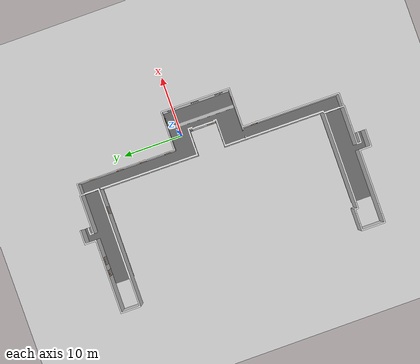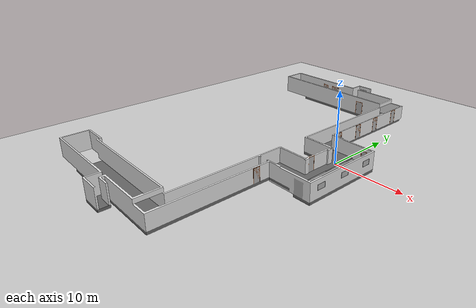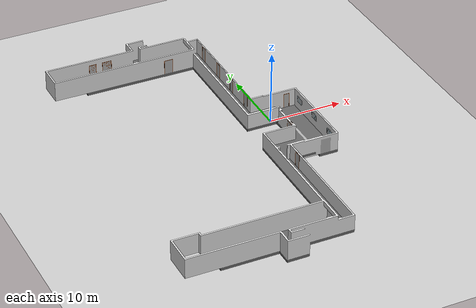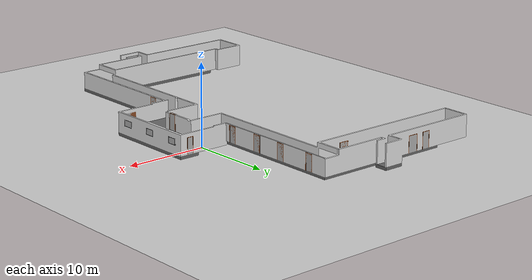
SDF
<?xml version="1.0"?>
<sdf version="1.6">
  <world name="default">

    <gui fullscreen='0'>
      <camera name='user_camera'>
        <pose frame=''>8.18313 -3.28715 9.77259 0 0.855643 2.7162</pose>
        <view_controller>orbit</view_controller>
        <projection_type>perspective</projection_type>
      </camera>
    </gui>

    <physics type="ode">
      <max_step_size>0.001</max_step_size>
      <gravity>0 0 -9.8</gravity>
      <ode>
        <solver>
          <type>quick</type>
          <iters>20</iters>
          <sor>1.0</sor>
        </solver>
        <constraints>
          <cfm>0.0</cfm>
          <erp>0.2</erp>
          <contact_max_correcting_vel>100.0</contact_max_correcting_vel>
          <contact_surface_layer>0.0</contact_surface_layer>
        </constraints>
      </ode>
    </physics>

    <!-- A global light source -->
    <include>
      <uri>model://sun</uri>
    </include>

    <!-- A ground plane -->
    <include>
      <uri>model://ground_plane</uri>
    </include>

    <!-- Custom dae file (converted from IFC) -->
    <include>
      <uri>/home/go1/Desktop/workspace/unitree_go1/unitree-go2-ros2/robots/configs/go1_config/worlds/building_editor_models/hall</uri>
      <pose>16 -5 4.4 0 0 0</pose>
    </include>

  </world>
</sdf>

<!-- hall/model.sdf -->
<sdf version="1.6">
  <model name="hall">
    <static>true</static>
    <link name="walls">
      <collision name="collision">
        <geometry>
          <mesh>
            <uri>file:///home/go1/Desktop/workspace/unitree_go1/src/unitree_ros2_sim/go1_sim/go1_gazebo/worlds/building_editor_models/hall/meshes/hall.dae</uri>
          </mesh>
        </geometry>
      </collision>
      <visual name="visual">
        <geometry>
          <mesh>
            <uri>file:///home/go1/Desktop/workspace/unitree_go1/src/unitree_ros2_sim/go1_sim/go1_gazebo/worlds/building_editor_models/hall/meshes/hall.dae</uri>
          </mesh>
        </geometry>
        <transparency> 0.1 </transparency>
      </visual>
    </link>
  </model>
</sdf>
